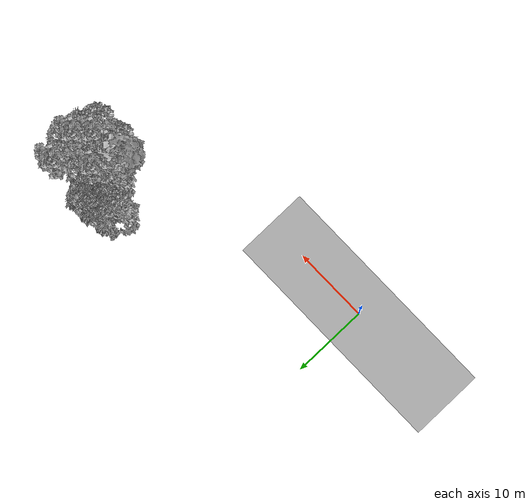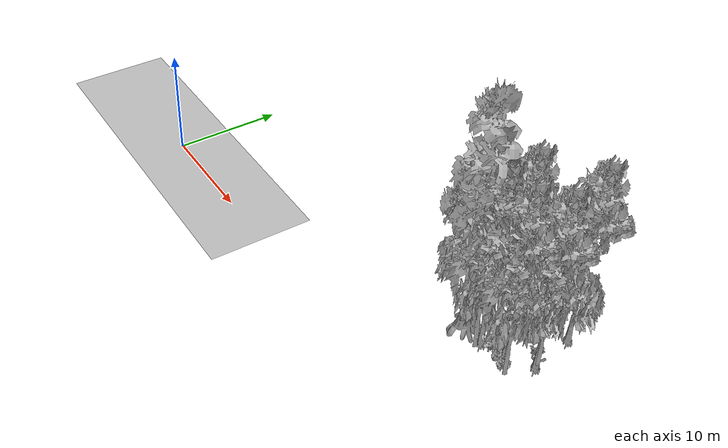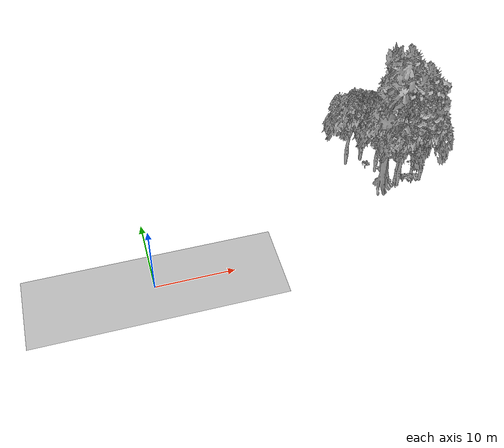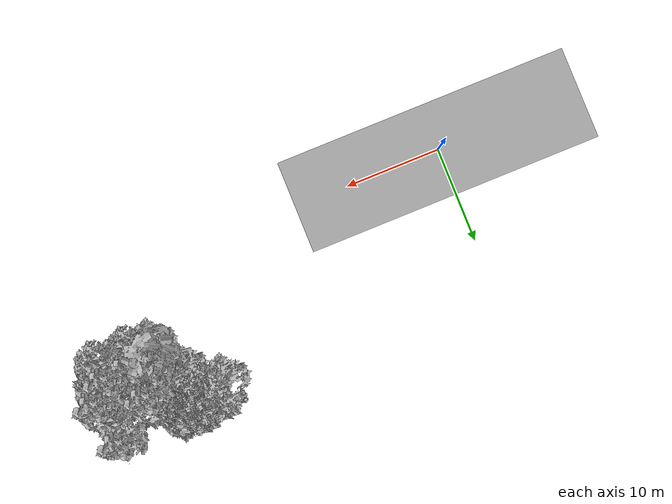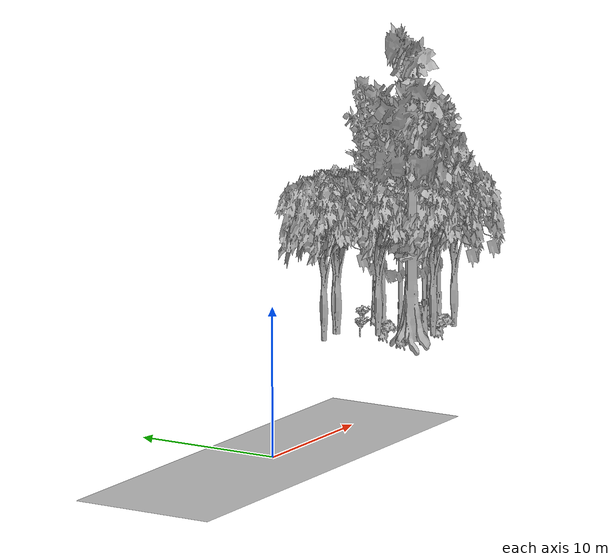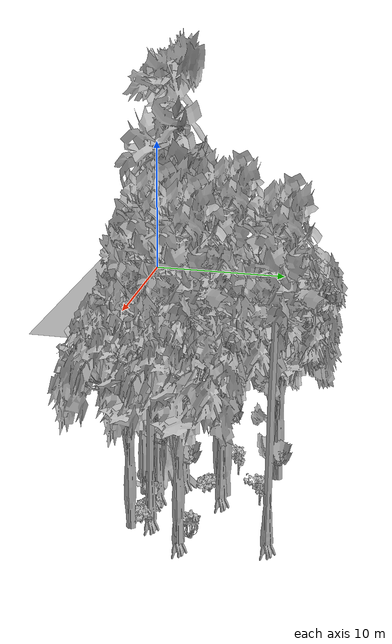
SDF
<sdf version="1.7">
 <world name="default">
  <model name="ground_plane">
   <static>1</static>
   <link name="link">
    <collision name="collision">
     <geometry><plane><normal>0 0 1</normal><size>100 100</size></plane></geometry>
     <surface><contact><ode><min_depth>0.01</min_depth><max_vel>0</max_vel></ode></contact></surface>
    </collision>
    <visual name="grass">
     <cast_shadows>0</cast_shadows>
     <geometry>
      <mesh>
       <scale>0.5814285714285714 0.18142857142857144 0.1</scale>
       <uri>file://grass_plane/meshes/grass_plane.dae</uri>
      </mesh>
     </geometry>
    </visual>
   </link>
  </model>
  <model name="Tree 0">
   <static>1</static>
   <pose>29.50679900570651 13.994429369647964 0 1.57079 -0 0</pose>
   <link name="link">
    <collision name="collision">
     <geometry><mesh><scale>3.5 5 3.5</scale><uri>model://tree_2/meshes/tree_2.obj</uri></mesh></geometry>
    </collision>
    <visual name="visual">
     <geometry><mesh><scale>3.5 5 3.5</scale><uri>model://tree_2/meshes/tree_2.obj</uri></mesh></geometry>
    </visual>
   </link>
  </model>
  <model name="Tree 4">
   <static>1</static>
   <pose>38.91275151909173 10.886615701169202 0 1.57079 -0 0</pose>
   <link name="link">
    <collision name="collision">
     <geometry><mesh><scale>3.5 5 3.5</scale><uri>model://tree_9/meshes/tree_9.obj</uri></mesh></geometry>
    </collision>
    <visual name="visual">
     <geometry><mesh><scale>3.5 5 3.5</scale><uri>model://tree_9/meshes/tree_9.obj</uri></mesh></geometry>
    </visual>
   </link>
  </model>
  <model name="Tree 5">
   <static>1</static>
   <pose>38.91924543740703 10.909706359003845 0 1.57079 -0 0</pose>
   <link name="link">
    <collision name="collision">
     <geometry><mesh><scale>3.5 5 3.5</scale><uri>model://tree_2/meshes/tree_2.obj</uri></mesh></geometry>
    </collision>
    <visual name="visual">
     <geometry><mesh><scale>3.5 5 3.5</scale><uri>model://tree_2/meshes/tree_2.obj</uri></mesh></geometry>
    </visual>
   </link>
  </model>
  <model name="Tree 80">
   <static>1</static>
   <pose>38.117190846492534 8.400254554037218 0 1.57079 -0 0</pose>
   <link name="link">
    <collision name="collision">
     <geometry><mesh><scale>3.5 5 3.5</scale><uri>model://tree_2/meshes/tree_2.obj</uri></mesh></geometry>
    </collision>
    <visual name="visual">
     <geometry><mesh><scale>3.5 5 3.5</scale><uri>model://tree_2/meshes/tree_2.obj</uri></mesh></geometry>
    </visual>
   </link>
  </model>
  <model name="Tree 97">
   <static>1</static>
   <pose>32.91789024790141 8.859171140446456 0 1.57079 -0 0</pose>
   <link name="link">
    <collision name="collision">
     <geometry><mesh><scale>3.5 5 3.5</scale><uri>model://tree_4/meshes/tree_4.obj</uri></mesh></geometry>
    </collision>
    <visual name="visual">
     <geometry><mesh><scale>3.5 5 3.5</scale><uri>model://tree_4/meshes/tree_4.obj</uri></mesh></geometry>
    </visual>
   </link>
  </model>
  <model name="Tree 116">
   <static>1</static>
   <pose>33.07456610849317 9.807551180397166 0 1.57079 -0 0</pose>
   <link name="link">
    <collision name="collision">
     <geometry><mesh><scale>3.5 5 3.5</scale><uri>model://tree_9/meshes/tree_9.obj</uri></mesh></geometry>
    </collision>
    <visual name="visual">
     <geometry><mesh><scale>3.5 5 3.5</scale><uri>model://tree_9/meshes/tree_9.obj</uri></mesh></geometry>
    </visual>
   </link>
  </model>
  <model name="Tree 125">
   <static>1</static>
   <pose>34.035935386266004 12.181622619241871 0 1.57079 -0 0</pose>
   <link name="link">
    <collision name="collision">
     <geometry><mesh><scale>3.5 5 3.5</scale><uri>model://tree_2/meshes/tree_2.obj</uri></mesh></geometry>
    </collision>
    <visual name="visual">
     <geometry><mesh><scale>3.5 5 3.5</scale><uri>model://tree_2/meshes/tree_2.obj</uri></mesh></geometry>
    </visual>
   </link>
  </model>
  <model name="Tree 173">
   <static>1</static>
   <pose>34.3563062662641 11.991830188124776 0 1.57079 -0 0</pose>
   <link name="link">
    <collision name="collision">
     <geometry><mesh><scale>3.5 5 3.5</scale><uri>model://tree_9/meshes/tree_9.obj</uri></mesh></geometry>
    </collision>
    <visual name="visual">
     <geometry><mesh><scale>3.5 5 3.5</scale><uri>model://tree_9/meshes/tree_9.obj</uri></mesh></geometry>
    </visual>
   </link>
  </model>
  <model name="Tree 180">
   <static>1</static>
   <pose>32.87252348278544 11.565163083690667 0 1.57079 -0 0</pose>
   <link name="link">
    <collision name="collision">
     <geometry><mesh><scale>3.5 5 3.5</scale><uri>model://tree_2/meshes/tree_2.obj</uri></mesh></geometry>
    </collision>
    <visual name="visual">
     <geometry><mesh><scale>3.5 5 3.5</scale><uri>model://tree_2/meshes/tree_2.obj</uri></mesh></geometry>
    </visual>
   </link>
  </model>
  <model name="Tree 252">
   <static>1</static>
   <pose>38.12156768366032 14.910639083860033 0 1.57079 -0 0</pose>
   <link name="link">
    <collision name="collision">
     <geometry><mesh><scale>3.5 5 3.5</scale><uri>model://tree_9/meshes/tree_9.obj</uri></mesh></geometry>
    </collision>
    <visual name="visual">
     <geometry><mesh><scale>3.5 5 3.5</scale><uri>model://tree_9/meshes/tree_9.obj</uri></mesh></geometry>
    </visual>
   </link>
  </model>
  <model name="Tree 283">
   <static>1</static>
   <pose>34.789056488112166 8.204186953170918 0 1.57079 -0 0</pose>
   <link name="link">
    <collision name="collision">
     <geometry><mesh><scale>3.5 5 3.5</scale><uri>model://tree_2/meshes/tree_2.obj</uri></mesh></geometry>
    </collision>
    <visual name="visual">
     <geometry><mesh><scale>3.5 5 3.5</scale><uri>model://tree_2/meshes/tree_2.obj</uri></mesh></geometry>
    </visual>
   </link>
  </model>
  <model name="Tree 287">
   <static>1</static>
   <pose>37.23749196554925 9.122727154770704 0 1.57079 -0 0</pose>
   <link name="link">
    <collision name="collision">
     <geometry><mesh><scale>3.5 5 3.5</scale><uri>model://tree_9/meshes/tree_9.obj</uri></mesh></geometry>
    </collision>
    <visual name="visual">
     <geometry><mesh><scale>3.5 5 3.5</scale><uri>model://tree_9/meshes/tree_9.obj</uri></mesh></geometry>
    </visual>
   </link>
  </model>
  <model name="Tree 414">
   <static>1</static>
   <pose>31.76701844205776 14.237178017835586 0 1.57079 -0 0</pose>
   <link name="link">
    <collision name="collision">
     <geometry><mesh><scale>3.5 5 3.5</scale><uri>model://tree_2/meshes/tree_2.obj</uri></mesh></geometry>
    </collision>
    <visual name="visual">
     <geometry><mesh><scale>3.5 5 3.5</scale><uri>model://tree_2/meshes/tree_2.obj</uri></mesh></geometry>
    </visual>
   </link>
  </model>
  <model name="Tree 436">
   <static>1</static>
   <pose>34.813011307635435 8.897558145472324 0 1.57079 -0 0</pose>
   <link name="link">
    <collision name="collision">
     <geometry><mesh><scale>3.5 5 3.5</scale><uri>model://tree_9/meshes/tree_9.obj</uri></mesh></geometry>
    </collision>
    <visual name="visual">
     <geometry><mesh><scale>3.5 5 3.5</scale><uri>model://tree_9/meshes/tree_9.obj</uri></mesh></geometry>
    </visual>
   </link>
  </model>
  <model name="Tree 443">
   <static>1</static>
   <pose>31.76076629657932 14.426060512472777 0 1.57079 -0 0</pose>
   <link name="link">
    <collision name="collision">
     <geometry><mesh><scale>3.5 5 3.5</scale><uri>model://tree_2/meshes/tree_2.obj</uri></mesh></geometry>
    </collision>
    <visual name="visual">
     <geometry><mesh><scale>3.5 5 3.5</scale><uri>model://tree_2/meshes/tree_2.obj</uri></mesh></geometry>
    </visual>
   </link>
  </model>
  <model name="Bush 107">
   <static>1</static>
   <pose>35.889074727317634 8.745791947921962 0 1.57079 -0 0</pose>
   <link name="link">
    <collision name="collision">
     <geometry><mesh><scale>2 2 2</scale><uri>model://bush_0/meshes/bush_0.obj</uri></mesh></geometry>
     <surface><contact><collide_without_contact>false</collide_without_contact></contact></surface>
    </collision>
    <visual name="visual">
     <geometry><mesh><scale>2 2 2</scale><uri>model://bush_0/meshes/bush_0.obj</uri></mesh></geometry>
    </visual>
   </link>
  </model>
  <model name="Bush 145">
   <static>1</static>
   <pose>33.956300310756774 11.334745805792476 0 1.57079 -0 0</pose>
   <link name="link">
    <collision name="collision">
     <geometry><mesh><scale>2 2 2</scale><uri>model://bush_3/meshes/bush_3.obj</uri></mesh></geometry>
     <surface><contact><collide_without_contact>false</collide_without_contact></contact></surface>
    </collision>
    <visual name="visual">
     <geometry><mesh><scale>2 2 2</scale><uri>model://bush_3/meshes/bush_3.obj</uri></mesh></geometry>
    </visual>
   </link>
  </model>
  <model name="Bush 169">
   <static>1</static>
   <pose>36.8881605968552 8.988890908493065 0 1.57079 -0 0</pose>
   <link name="link">
    <collision name="collision">
     <geometry><mesh><scale>2 2 2</scale><uri>model://bush_3/meshes/bush_3.obj</uri></mesh></geometry>
     <surface><contact><collide_without_contact>false</collide_without_contact></contact></surface>
    </collision>
    <visual name="visual">
     <geometry><mesh><scale>2 2 2</scale><uri>model://bush_3/meshes/bush_3.obj</uri></mesh></geometry>
    </visual>
   </link>
  </model>
  <model name="Bush 212">
   <static>1</static>
   <pose>37.699477406857824 8.78946311968561 0 1.57079 -0 0</pose>
   <link name="link">
    <collision name="collision">
     <geometry><mesh><scale>2 2 2</scale><uri>model://bush_3/meshes/bush_3.obj</uri></mesh></geometry>
     <surface><contact><collide_without_contact>false</collide_without_contact></contact></surface>
    </collision>
    <visual name="visual">
     <geometry><mesh><scale>2 2 2</scale><uri>model://bush_3/meshes/bush_3.obj</uri></mesh></geometry>
    </visual>
   </link>
  </model>
  <model name="Bush 258">
   <static>1</static>
   <pose>34.726491389163016 14.01301501267437 0 1.57079 -0 0</pose>
   <link name="link">
    <collision name="collision">
     <geometry><mesh><scale>2 2 2</scale><uri>model://bush_5/meshes/bush_5.obj</uri></mesh></geometry>
     <surface><contact><collide_without_contact>false</collide_without_contact></contact></surface>
    </collision>
    <visual name="visual">
     <geometry><mesh><scale>2 2 2</scale><uri>model://bush_5/meshes/bush_5.obj</uri></mesh></geometry>
    </visual>
   </link>
  </model>
  <model name="Bush 285">
   <static>1</static>
   <pose>38.38362699188772 11.251331179127074 0 1.57079 -0 0</pose>
   <link name="link">
    <collision name="collision">
     <geometry><mesh><scale>2 2 2</scale><uri>model://bush_4/meshes/bush_4.obj</uri></mesh></geometry>
     <surface><contact><collide_without_contact>false</collide_without_contact></contact></surface>
    </collision>
    <visual name="visual">
     <geometry><mesh><scale>2 2 2</scale><uri>model://bush_4/meshes/bush_4.obj</uri></mesh></geometry>
    </visual>
   </link>
  </model>
  <model name="Bush 289">
   <static>1</static>
   <pose>31.877983381076263 12.419199568592731 0 1.57079 -0 0</pose>
   <link name="link">
    <collision name="collision">
     <geometry><mesh><scale>2 2 2</scale><uri>model://bush_5/meshes/bush_5.obj</uri></mesh></geometry>
     <surface><contact><collide_without_contact>false</collide_without_contact></contact></surface>
    </collision>
    <visual name="visual">
     <geometry><mesh><scale>2 2 2</scale><uri>model://bush_5/meshes/bush_5.obj</uri></mesh></geometry>
    </visual>
   </link>
  </model>
 </world>
</sdf>
